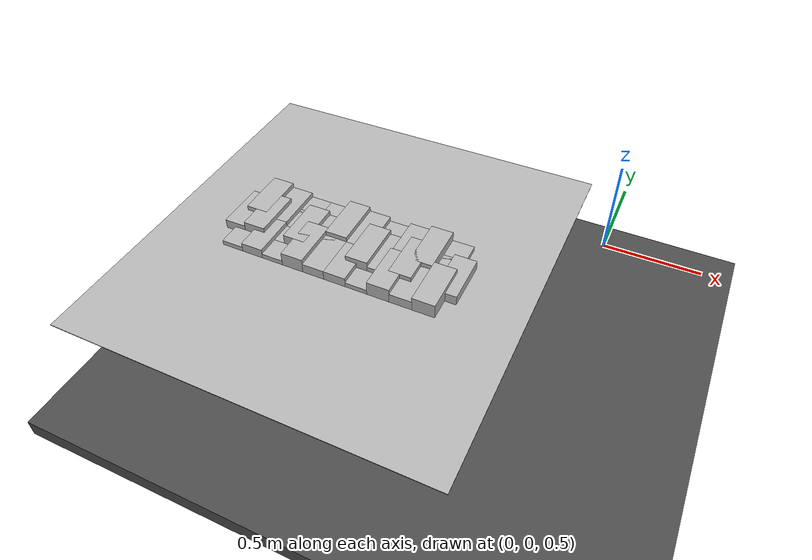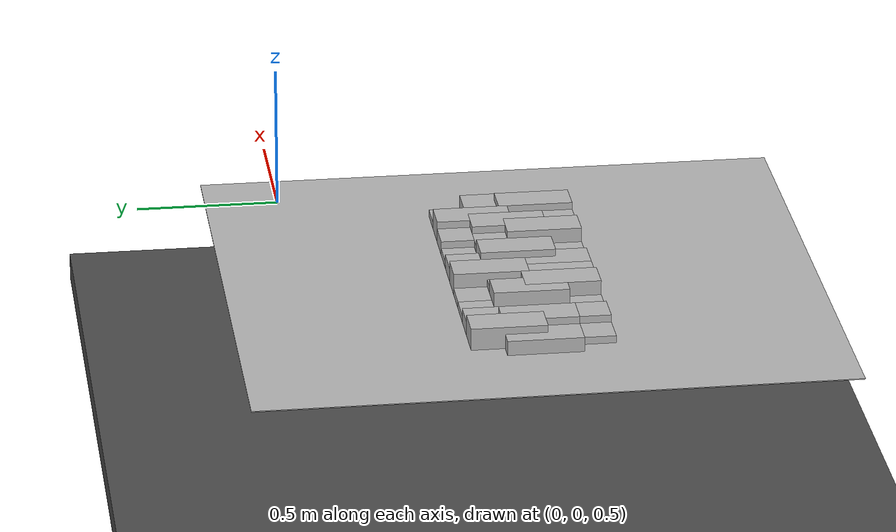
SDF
<sdf version="1.6">
 <world name="default">
  <model name="ground_plane">
   <static>1</static>
   <link name="link">
    <collision name="collision">
     <geometry><plane><normal>0 0 1</normal><size>100 100</size></plane></geometry>
     <surface><friction><ode><mu>100</mu><mu2>50</mu2></ode></friction></surface>
    </collision>
    <visual name="visual">
     <cast_shadows>0</cast_shadows>
     <geometry><plane><normal>0 0 1</normal><size>100 100</size></plane></geometry>
     <material>
      <script><uri>file://media/materials/scripts/gazebo.material</uri><name>Gazebo/Grey</name></script>
     </material>
    </visual>
   </link>
  </model>
  <model name="frc2016_roughterrain_0">
   <link name="link_clone_1">
    <pose>-1.02017 -0.749064 -0.073164 0 -0 0</pose>
    <inertial>
     <inertia><ixx>nan</ixx><ixy>0</ixy><ixz>0</ixz><iyy>nan</iyy><iyz>0</iyz><izz>nan</izz></inertia>
     <mass>0</mass>
    </inertial>
    <visual name="row1_block5_md">
     <pose>0.05715 0.1143 0.10968 0 -0 0</pose>
     <geometry><box><size>0.115452 0.257474 0.0508</size></box></geometry>
     <material><shader type="pixel"/></material>
    </visual>
    <visual name="row1_block2_lg">
     <pose>0.40005 0.1143 0.12238 0 -0 0</pose>
     <geometry><box><size>0.115452 0.257474 0.0762</size></box></geometry>
     <material><shader type="pixel"/></material>
    </visual>
    <visual name="row1_block4_sm">
     <pose>0.17145 0.1143 0.09698 0 -0 0</pose>
     <geometry><box><size>0.115452 0.257474 0.0254</size></box></geometry>
     <material><shader type="pixel"/></material>
    </visual>
    <visual name="platform">
     <pose>0 0 0.08269 0 -0 0</pose>
     <geometry><box><size>1.91826 2.01688 0.003175</size></box></geometry>
     <material><shader type="pixel"/></material>
    </visual>
    <visual name="row1_block1_sm">
     <pose>0.51435 0.1143 0.09698 0 -0 0</pose>
     <geometry><box><size>0.115452 0.257474 0.0254</size></box></geometry>
     <material><shader type="pixel"/></material>
    </visual>
    <visual name="row1_block3_md">
     <pose>0.28575 0.1143 0.10968 0 -0 0</pose>
     <geometry><box><size>0.115452 0.257474 0.0508</size></box></geometry>
     <material><shader type="pixel"/></material>
    </visual>
    <visual name="row1_block6_lg">
     <pose>-0.05715 0.1143 0.12238 0 -0 0</pose>
     <geometry><box><size>0.115452 0.257474 0.0762</size></box></geometry>
     <material><shader type="pixel"/></material>
    </visual>
    <visual name="row1_block7_sm">
     <pose>-0.17145 0.1143 0.09698 0 -0 0</pose>
     <geometry><box><size>0.115452 0.257474 0.0254</size></box></geometry>
     <material><shader type="pixel"/></material>
    </visual>
    <visual name="row1_block8_sm">
     <pose>-0.28575 0.1143 0.09698 0 -0 0</pose>
     <geometry><box><size>0.115452 0.257474 0.0254</size></box></geometry>
     <material><shader type="pixel"/></material>
    </visual>
    <visual name="row1_block9_md">
     <pose>-0.40005 0.1143 0.10968 0 -0 0</pose>
     <geometry><box><size>0.115452 0.257474 0.0508</size></box></geometry>
     <material><shader type="pixel"/></material>
    </visual>
    <visual name="row1_block10_lg">
     <pose>-0.51435 0.1143 0.12238 0 -0 0</pose>
     <geometry><box><size>0.115452 0.257474 0.0762</size></box></geometry>
     <material><shader type="pixel"/></material>
    </visual>
    <visual name="row2_block1_md">
     <pose>0.5715 0 0.10968 0 -0 0</pose>
     <geometry><box><size>0.115452 0.257474 0.0508</size></box></geometry>
     <material><shader type="pixel"/></material>
    </visual>
    <visual name="row2_block2_sm">
     <pose>0.4572 0 0.09698 0 -0 0</pose>
     <geometry><box><size>0.115452 0.257474 0.0254</size></box></geometry>
     <material><shader type="pixel"/></material>
    </visual>
    <visual name="row2_block3_lg">
     <pose>0.3429 0 0.12238 0 -0 0</pose>
     <geometry><box><size>0.115452 0.257474 0.0762</size></box></geometry>
     <material><shader type="pixel"/></material>
    </visual>
    <visual name="row2_block4_md">
     <pose>0.2286 0 0.10968 0 -0 0</pose>
     <geometry><box><size>0.115452 0.257474 0.0508</size></box></geometry>
     <material><shader type="pixel"/></material>
    </visual>
    <visual name="row2_block5_lg">
     <pose>0.1143 0 0.12238 0 -0 0</pose>
     <geometry><box><size>0.115452 0.257474 0.0762</size></box></geometry>
     <material><shader type="pixel"/></material>
    </visual>
    <visual name="row2_block6_sm">
     <pose>0 0 0.09698 0 -0 0</pose>
     <geometry><box><size>0.115452 0.257474 0.0254</size></box></geometry>
     <material><shader type="pixel"/></material>
    </visual>
    <visual name="row2_block7_md">
     <pose>-0.1143 0 0.10968 0 -0 0</pose>
     <geometry><box><size>0.115452 0.257474 0.0508</size></box></geometry>
     <material><shader type="pixel"/></material>
    </visual>
    <visual name="row2_block8_lg">
     <pose>-0.2286 0 0.12238 0 -0 0</pose>
     <geometry><box><size>0.115452 0.257474 0.0762</size></box></geometry>
     <material><shader type="pixel"/></material>
    </visual>
    <visual name="row2_block9_sm">
     <pose>-0.3429 0 0.09698 0 -0 0</pose>
     <geometry><box><size>0.115452 0.257474 0.0254</size></box></geometry>
     <material><shader type="pixel"/></material>
    </visual>
    <visual name="row2_block10_lg">
     <pose>-0.4572 0 0.12238 0 -0 0</pose>
     <geometry><box><size>0.115452 0.257474 0.0762</size></box></geometry>
     <material><shader type="pixel"/></material>
    </visual>
    <visual name="row2_block11_md">
     <pose>-0.5715 0 0.10968 0 -0 0</pose>
     <geometry><box><size>0.115452 0.257474 0.0508</size></box></geometry>
     <material><shader type="pixel"/></material>
    </visual>
    <visual name="row3_block2_md">
     <pose>0.40005 -0.1143 0.10968 0 -0 0</pose>
     <geometry><box><size>0.115452 0.257474 0.0508</size></box></geometry>
     <material><shader type="pixel"/></material>
    </visual>
    <visual name="row3_block1_lg">
     <pose>0.51435 -0.1143 0.12238 0 -0 0</pose>
     <geometry><box><size>0.115452 0.257474 0.0762</size></box></geometry>
     <material><shader type="pixel"/></material>
    </visual>
    <visual name="row3_block3_lg">
     <pose>0.28575 -0.1143 0.12238 0 -0 0</pose>
     <geometry><box><size>0.115452 0.257474 0.0762</size></box></geometry>
     <material><shader type="pixel"/></material>
    </visual>
    <visual name="row3_block4_sm">
     <pose>0.17145 -0.1143 0.09698 0 -0 0</pose>
     <geometry><box><size>0.115452 0.257474 0.0254</size></box></geometry>
     <material><shader type="pixel"/></material>
    </visual>
    <visual name="row3_block5_md">
     <pose>0.05715 -0.1143 0.10968 0 -0 0</pose>
     <geometry><box><size>0.115452 0.257474 0.0508</size></box></geometry>
     <material><shader type="pixel"/></material>
    </visual>
    <visual name="row3_block6_md">
     <pose>-0.05715 -0.1143 0.10968 0 -0 0</pose>
     <geometry><box><size>0.115452 0.257474 0.0508</size></box></geometry>
     <material><shader type="pixel"/></material>
    </visual>
    <visual name="row3_block8_sm">
     <pose>-0.28575 -0.1143 0.09698 0 -0 0</pose>
     <geometry><box><size>0.115452 0.257474 0.0254</size></box></geometry>
     <material><shader type="pixel"/></material>
    </visual>
    <visual name="row3_block7_lg">
     <pose>-0.17145 -0.1143 0.12238 0 -0 0</pose>
     <geometry><box><size>0.115452 0.257474 0.0762</size></box></geometry>
     <material><shader type="pixel"/></material>
    </visual>
    <visual name="row3_block9_md">
     <pose>-0.40005 -0.1143 0.10968 0 -0 0</pose>
     <geometry><box><size>0.115452 0.257474 0.0508</size></box></geometry>
     <material><shader type="pixel"/></material>
    </visual>
    <visual name="row3_block10_sm">
     <pose>-0.51435 -0.1143 0.09698 0 -0 0</pose>
     <geometry><box><size>0.115452 0.257474 0.0254</size></box></geometry>
     <material><shader type="pixel"/></material>
    </visual>
    <collision name="row2_block5_lg_0">
     <pose>0.1143 0 0.12238 0 -0 0</pose>
     <geometry><box><size>0.115452 0.257474 0.0762</size></box></geometry>
     <surface>
      <friction>
       <ode><mu>1</mu><mu2>1</mu2><fdir1>0 0 0</fdir1><slip1>0</slip1><slip2>0</slip2></ode>
       <torsional>
        <coefficient>1</coefficient>
        <patch_radius>0</patch_radius>
        <surface_radius>0</surface_radius>
        <use_patch_radius>1</use_patch_radius>
        <ode><slip>0</slip></ode>
       </torsional>
      </friction>
      <bounce><restitution_coefficient>0</restitution_coefficient><threshold>1e+06</threshold></bounce>
      <contact>
       <collide_without_contact>0</collide_without_contact>
       <collide_without_contact_bitmask>1</collide_without_contact_bitmask>
       <collide_bitmask>1</collide_bitmask>
       <ode>
        <soft_cfm>0</soft_cfm>
        <soft_erp>0.2</soft_erp>
        <kp>1e+13</kp>
        <kd>1</kd>
        <max_vel>0.01</max_vel>
        <min_depth>0</min_depth>
       </ode>
       <bullet>
        <split_impulse>1</split_impulse>
        <split_impulse_penetration_threshold>-0.01</split_impulse_penetration_threshold>
        <soft_cfm>0</soft_cfm>
        <soft_erp>0.2</soft_erp>
        <kp>1e+13</kp>
        <kd>1</kd>
       </bullet>
      </contact>
     </surface>
    </collision>
    <collision name="platform_0">
     <pose>0 0 0.08269 0 -0 0</pose>
     <geometry><box><size>1.91826 2.01688 0.003175</size></box></geometry>
     <surface>
      <friction>
       <ode><mu>1</mu><mu2>1</mu2><fdir1>0 0 0</fdir1><slip1>0</slip1><slip2>0</slip2></ode>
       <torsional>
        <coefficient>1</coefficient>
        <patch_radius>0</patch_radius>
        <surface_radius>0</surface_radius>
        <use_patch_radius>1</use_patch_radius>
        <ode><slip>0</slip></ode>
       </torsional>
      </friction>
      <bounce><restitution_coefficient>0</restitution_coefficient><threshold>1e+06</threshold></bounce>
      <contact>
       <collide_without_contact>0</collide_without_contact>
       <collide_without_contact_bitmask>1</collide_without_contact_bitmask>
       <collide_bitmask>1</collide_bitmask>
       <ode>
        <soft_cfm>0</soft_cfm>
        <soft_erp>0.2</soft_erp>
        <kp>1e+13</kp>
        <kd>1</kd>
        <max_vel>0.01</max_vel>
        <min_depth>0</min_depth>
       </ode>
       <bullet>
        <split_impulse>1</split_impulse>
        <split_impulse_penetration_threshold>-0.01</split_impulse_penetration_threshold>
        <soft_cfm>0</soft_cfm>
        <soft_erp>0.2</soft_erp>
        <kp>1e+13</kp>
        <kd>1</kd>
       </bullet>
      </contact>
     </surface>
    </collision>
    <collision name="row1_block1_sm_0">
     <pose>0.51435 0.1143 0.09698 0 -0 0</pose>
     <geometry><box><size>0.115452 0.257474 0.0254</size></box></geometry>
     <surface>
      <friction>
       <ode><mu>1</mu><mu2>1</mu2><fdir1>0 0 0</fdir1><slip1>0</slip1><slip2>0</slip2></ode>
       <torsional>
        <coefficient>1</coefficient>
        <patch_radius>0</patch_radius>
        <surface_radius>0</surface_radius>
        <use_patch_radius>1</use_patch_radius>
        <ode><slip>0</slip></ode>
       </torsional>
      </friction>
      <bounce><restitution_coefficient>0</restitution_coefficient><threshold>1e+06</threshold></bounce>
      <contact>
       <collide_without_contact>0</collide_without_contact>
       <collide_without_contact_bitmask>1</collide_without_contact_bitmask>
       <collide_bitmask>1</collide_bitmask>
       <ode>
        <soft_cfm>0</soft_cfm>
        <soft_erp>0.2</soft_erp>
        <kp>1e+13</kp>
        <kd>1</kd>
        <max_vel>0.01</max_vel>
        <min_depth>0</min_depth>
       </ode>
       <bullet>
        <split_impulse>1</split_impulse>
        <split_impulse_penetration_threshold>-0.01</split_impulse_penetration_threshold>
        <soft_cfm>0</soft_cfm>
        <soft_erp>0.2</soft_erp>
        <kp>1e+13</kp>
        <kd>1</kd>
       </bullet>
      </contact>
     </surface>
    </collision>
    <collision name="row1_block3_md_0">
     <pose>0.28575 0.1143 0.10968 0 -0 0</pose>
     <geometry><box><size>0.115452 0.257474 0.0508</size></box></geometry>
     <surface>
      <friction>
       <ode><mu>1</mu><mu2>1</mu2><fdir1>0 0 0</fdir1><slip1>0</slip1><slip2>0</slip2></ode>
       <torsional>
        <coefficient>1</coefficient>
        <patch_radius>0</patch_radius>
        <surface_radius>0</surface_radius>
        <use_patch_radius>1</use_patch_radius>
        <ode><slip>0</slip></ode>
       </torsional>
      </friction>
      <bounce><restitution_coefficient>0</restitution_coefficient><threshold>1e+06</threshold></bounce>
      <contact>
       <collide_without_contact>0</collide_without_contact>
       <collide_without_contact_bitmask>1</collide_without_contact_bitmask>
       <collide_bitmask>1</collide_bitmask>
       <ode>
        <soft_cfm>0</soft_cfm>
        <soft_erp>0.2</soft_erp>
        <kp>1e+13</kp>
        <kd>1</kd>
        <max_vel>0.01</max_vel>
        <min_depth>0</min_depth>
       </ode>
       <bullet>
        <split_impulse>1</split_impulse>
        <split_impulse_penetration_threshold>-0.01</split_impulse_penetration_threshold>
        <soft_cfm>0</soft_cfm>
        <soft_erp>0.2</soft_erp>
        <kp>1e+13</kp>
        <kd>1</kd>
       </bullet>
      </contact>
     </surface>
    </collision>
    <collision name="row1_block6_lg_0">
     <pose>-0.05715 0.1143 0.12238 0 -0 0</pose>
     <geometry><box><size>0.115452 0.257474 0.0762</size></box></geometry>
     <surface>
      <friction>
       <ode><mu>1</mu><mu2>1</mu2><fdir1>0 0 0</fdir1><slip1>0</slip1><slip2>0</slip2></ode>
       <torsional>
        <coefficient>1</coefficient>
        <patch_radius>0</patch_radius>
        <surface_radius>0</surface_radius>
        <use_patch_radius>1</use_patch_radius>
        <ode><slip>0</slip></ode>
       </torsional>
      </friction>
      <bounce><restitution_coefficient>0</restitution_coefficient><threshold>1e+06</threshold></bounce>
      <contact>
       <collide_without_contact>0</collide_without_contact>
       <collide_without_contact_bitmask>1</collide_without_contact_bitmask>
       <collide_bitmask>1</collide_bitmask>
       <ode>
        <soft_cfm>0</soft_cfm>
        <soft_erp>0.2</soft_erp>
        <kp>1e+13</kp>
        <kd>1</kd>
        <max_vel>0.01</max_vel>
        <min_depth>0</min_depth>
       </ode>
       <bullet>
        <split_impulse>1</split_impulse>
        <split_impulse_penetration_threshold>-0.01</split_impulse_penetration_threshold>
        <soft_cfm>0</soft_cfm>
        <soft_erp>0.2</soft_erp>
        <kp>1e+13</kp>
        <kd>1</kd>
       </bullet>
      </contact>
     </surface>
    </collision>
    <collision name="row1_block2_lg_0">
     <pose>0.40005 0.1143 0.12238 0 -0 0</pose>
     <geometry><box><size>0.115452 0.257474 0.0762</size></box></geometry>
     <surface>
      <friction>
       <ode><mu>1</mu><mu2>1</mu2><fdir1>0 0 0</fdir1><slip1>0</slip1><slip2>0</slip2></ode>
       <torsional>
        <coefficient>1</coefficient>
        <patch_radius>0</patch_radius>
        <surface_radius>0</surface_radius>
        <use_patch_radius>1</use_patch_radius>
        <ode><slip>0</slip></ode>
       </torsional>
      </friction>
      <bounce><restitution_coefficient>0</restitution_coefficient><threshold>1e+06</threshold></bounce>
      <contact>
       <collide_without_contact>0</collide_without_contact>
       <collide_without_contact_bitmask>1</collide_without_contact_bitmask>
       <collide_bitmask>1</collide_bitmask>
       <ode>
        <soft_cfm>0</soft_cfm>
        <soft_erp>0.2</soft_erp>
        <kp>1e+13</kp>
        <kd>1</kd>
        <max_vel>0.01</max_vel>
        <min_depth>0</min_depth>
       </ode>
       <bullet>
        <split_impulse>1</split_impulse>
        <split_impulse_penetration_threshold>-0.01</split_impulse_penetration_threshold>
        <soft_cfm>0</soft_cfm>
        <soft_erp>0.2</soft_erp>
        <kp>1e+13</kp>
        <kd>1</kd>
       </bullet>
      </contact>
     </surface>
    </collision>
    <collision name="row1_block4_sm_0">
     <pose>0.17145 0.1143 0.09698 0 -0 0</pose>
     <geometry><box><size>0.115452 0.257474 0.0254</size></box></geometry>
     <surface>
      <friction>
       <ode><mu>1</mu><mu2>1</mu2><fdir1>0 0 0</fdir1><slip1>0</slip1><slip2>0</slip2></ode>
       <torsional>
        <coefficient>1</coefficient>
        <patch_radius>0</patch_radius>
        <surface_radius>0</surface_radius>
        <use_patch_radius>1</use_patch_radius>
        <ode><slip>0</slip></ode>
       </torsional>
      </friction>
      <bounce><restitution_coefficient>0</restitution_coefficient><threshold>1e+06</threshold></bounce>
      <contact>
       <collide_without_contact>0</collide_without_contact>
       <collide_without_contact_bitmask>1</collide_without_contact_bitmask>
       <collide_bitmask>1</collide_bitmask>
       <ode>
        <soft_cfm>0</soft_cfm>
        <soft_erp>0.2</soft_erp>
        <kp>1e+13</kp>
        <kd>1</kd>
        <max_vel>0.01</max_vel>
        <min_depth>0</min_depth>
       </ode>
       <bullet>
        <split_impulse>1</split_impulse>
        <split_impulse_penetration_threshold>-0.01</split_impulse_penetration_threshold>
        <soft_cfm>0</soft_cfm>
        <soft_erp>0.2</soft_erp>
        <kp>1e+13</kp>
        <kd>1</kd>
       </bullet>
      </contact>
     </surface>
    </collision>
    <collision name="row1_block5_md_0">
     <pose>0.05715 0.1143 0.10968 0 -0 0</pose>
     <geometry><box><size>0.115452 0.257474 0.0508</size></box></geometry>
     <surface>
      <friction>
       <ode><mu>1</mu><mu2>1</mu2><fdir1>0 0 0</fdir1><slip1>0</slip1><slip2>0</slip2></ode>
       <torsional>
        <coefficient>1</coefficient>
        <patch_radius>0</patch_radius>
        <surface_radius>0</surface_radius>
        <use_patch_radius>1</use_patch_radius>
        <ode><slip>0</slip></ode>
       </torsional>
      </friction>
      <bounce><restitution_coefficient>0</restitution_coefficient><threshold>1e+06</threshold></bounce>
      <contact>
       <collide_without_contact>0</collide_without_contact>
       <collide_without_contact_bitmask>1</collide_without_contact_bitmask>
       <collide_bitmask>1</collide_bitmask>
       <ode>
        <soft_cfm>0</soft_cfm>
        <soft_erp>0.2</soft_erp>
        <kp>1e+13</kp>
        <kd>1</kd>
        <max_vel>0.01</max_vel>
        <min_depth>0</min_depth>
       </ode>
       <bullet>
        <split_impulse>1</split_impulse>
        <split_impulse_penetration_threshold>-0.01</split_impulse_penetration_threshold>
        <soft_cfm>0</soft_cfm>
        <soft_erp>0.2</soft_erp>
        <kp>1e+13</kp>
        <kd>1</kd>
       </bullet>
      </contact>
     </surface>
    </collision>
    <collision name="row1_block7_sm_0">
     <pose>-0.17145 0.1143 0.09698 0 -0 0</pose>
     <geometry><box><size>0.115452 0.257474 0.0254</size></box></geometry>
     <surface>
      <friction>
       <ode><mu>1</mu><mu2>1</mu2><fdir1>0 0 0</fdir1><slip1>0</slip1><slip2>0</slip2></ode>
       <torsional>
        <coefficient>1</coefficient>
        <patch_radius>0</patch_radius>
        <surface_radius>0</surface_radius>
        <use_patch_radius>1</use_patch_radius>
        <ode><slip>0</slip></ode>
       </torsional>
      </friction>
      <bounce><restitution_coefficient>0</restitution_coefficient><threshold>1e+06</threshold></bounce>
      <contact>
       <collide_without_contact>0</collide_without_contact>
       <collide_without_contact_bitmask>1</collide_without_contact_bitmask>
       <collide_bitmask>1</collide_bitmask>
       <ode>
        <soft_cfm>0</soft_cfm>
        <soft_erp>0.2</soft_erp>
        <kp>1e+13</kp>
        <kd>1</kd>
        <max_vel>0.01</max_vel>
        <min_depth>0</min_depth>
       </ode>
       <bullet>
        <split_impulse>1</split_impulse>
        <split_impulse_penetration_threshold>-0.01</split_impulse_penetration_threshold>
        <soft_cfm>0</soft_cfm>
        <soft_erp>0.2</soft_erp>
        <kp>1e+13</kp>
        <kd>1</kd>
       </bullet>
      </contact>
     </surface>
    </collision>
    <collision name="row1_block10_lg_0">
     <pose>-0.51435 0.1143 0.12238 0 -0 0</pose>
     <geometry><box><size>0.115452 0.257474 0.0762</size></box></geometry>
     <surface>
      <friction>
       <ode><mu>1</mu><mu2>1</mu2><fdir1>0 0 0</fdir1><slip1>0</slip1><slip2>0</slip2></ode>
       <torsional>
        <coefficient>1</coefficient>
        <patch_radius>0</patch_radius>
        <surface_radius>0</surface_radius>
        <use_patch_radius>1</use_patch_radius>
        <ode><slip>0</slip></ode>
       </torsional>
      </friction>
      <bounce><restitution_coefficient>0</restitution_coefficient><threshold>1e+06</threshold></bounce>
      <contact>
       <collide_without_contact>0</collide_without_contact>
       <collide_without_contact_bitmask>1</collide_without_contact_bitmask>
       <collide_bitmask>1</collide_bitmask>
       <ode>
        <soft_cfm>0</soft_cfm>
        <soft_erp>0.2</soft_erp>
        <kp>1e+13</kp>
        <kd>1</kd>
        <max_vel>0.01</max_vel>
        <min_depth>0</min_depth>
       </ode>
       <bullet>
        <split_impulse>1</split_impulse>
        <split_impulse_penetration_threshold>-0.01</split_impulse_penetration_threshold>
        <soft_cfm>0</soft_cfm>
        <soft_erp>0.2</soft_erp>
        <kp>1e+13</kp>
        <kd>1</kd>
       </bullet>
      </contact>
     </surface>
    </collision>
    <collision name="row1_block8_sm_0">
     <pose>-0.28575 0.1143 0.09698 0 -0 0</pose>
     <geometry><box><size>0.115452 0.257474 0.0254</size></box></geometry>
     <surface>
      <friction>
       <ode><mu>1</mu><mu2>1</mu2><fdir1>0 0 0</fdir1><slip1>0</slip1><slip2>0</slip2></ode>
       <torsional>
        <coefficient>1</coefficient>
        <patch_radius>0</patch_radius>
        <surface_radius>0</surface_radius>
        <use_patch_radius>1</use_patch_radius>
        <ode><slip>0</slip></ode>
       </torsional>
      </friction>
      <bounce><restitution_coefficient>0</restitution_coefficient><threshold>1e+06</threshold></bounce>
      <contact>
       <collide_without_contact>0</collide_without_contact>
       <collide_without_contact_bitmask>1</collide_without_contact_bitmask>
       <collide_bitmask>1</collide_bitmask>
       <ode>
        <soft_cfm>0</soft_cfm>
        <soft_erp>0.2</soft_erp>
        <kp>1e+13</kp>
        <kd>1</kd>
        <max_vel>0.01</max_vel>
        <min_depth>0</min_depth>
       </ode>
       <bullet>
        <split_impulse>1</split_impulse>
        <split_impulse_penetration_threshold>-0.01</split_impulse_penetration_threshold>
        <soft_cfm>0</soft_cfm>
        <soft_erp>0.2</soft_erp>
        <kp>1e+13</kp>
        <kd>1</kd>
       </bullet>
      </contact>
     </surface>
    </collision>
    <collision name="row1_block9_md_0">
     <pose>-0.40005 0.1143 0.10968 0 -0 0</pose>
     <geometry><box><size>0.115452 0.257474 0.0508</size></box></geometry>
     <surface>
      <friction>
       <ode><mu>1</mu><mu2>1</mu2><fdir1>0 0 0</fdir1><slip1>0</slip1><slip2>0</slip2></ode>
       <torsional>
        <coefficient>1</coefficient>
        <patch_radius>0</patch_radius>
        <surface_radius>0</surface_radius>
        <use_patch_radius>1</use_patch_radius>
        <ode><slip>0</slip></ode>
       </torsional>
      </friction>
      <bounce><restitution_coefficient>0</restitution_coefficient><threshold>1e+06</threshold></bounce>
      <contact>
       <collide_without_contact>0</collide_without_contact>
       <collide_without_contact_bitmask>1</collide_without_contact_bitmask>
       <collide_bitmask>1</collide_bitmask>
       <ode>
        <soft_cfm>0</soft_cfm>
        <soft_erp>0.2</soft_erp>
        <kp>1e+13</kp>
        <kd>1</kd>
        <max_vel>0.01</max_vel>
        <min_depth>0</min_depth>
       </ode>
       <bullet>
        <split_impulse>1</split_impulse>
        <split_impulse_penetration_threshold>-0.01</split_impulse_penetration_threshold>
        <soft_cfm>0</soft_cfm>
        <soft_erp>0.2</soft_erp>
        <kp>1e+13</kp>
        <kd>1</kd>
       </bullet>
      </contact>
     </surface>
    </collision>
    <collision name="row2_block1_md_0">
     <pose>0.5715 0 0.10968 0 -0 0</pose>
     <geometry><box><size>0.115452 0.257474 0.0508</size></box></geometry>
     <surface>
      <friction>
       <ode><mu>1</mu><mu2>1</mu2><fdir1>0 0 0</fdir1><slip1>0</slip1><slip2>0</slip2></ode>
       <torsional>
        <coefficient>1</coefficient>
        <patch_radius>0</patch_radius>
        <surface_radius>0</surface_radius>
        <use_patch_radius>1</use_patch_radius>
        <ode><slip>0</slip></ode>
       </torsional>
      </friction>
      <bounce><restitution_coefficient>0</restitution_coefficient><threshold>1e+06</threshold></bounce>
      <contact>
       <collide_without_contact>0</collide_without_contact>
       <collide_without_contact_bitmask>1</collide_without_contact_bitmask>
       <collide_bitmask>1</collide_bitmask>
       <ode>
        <soft_cfm>0</soft_cfm>
        <soft_erp>0.2</soft_erp>
        <kp>1e+13</kp>
        <kd>1</kd>
        <max_vel>0.01</max_vel>
        <min_depth>0</min_depth>
       </ode>
       <bullet>
        <split_impulse>1</split_impulse>
        <split_impulse_penetration_threshold>-0.01</split_impulse_penetration_threshold>
        <soft_cfm>0</soft_cfm>
        <soft_erp>0.2</soft_erp>
        <kp>1e+13</kp>
        <kd>1</kd>
       </bullet>
      </contact>
     </surface>
    </collision>
    <collision name="row2_block2_sm_0">
     <pose>0.4572 0 0.09698 0 -0 0</pose>
     <geometry><box><size>0.115452 0.257474 0.0254</size></box></geometry>
     <surface>
      <friction>
       <ode><mu>1</mu><mu2>1</mu2><fdir1>0 0 0</fdir1><slip1>0</slip1><slip2>0</slip2></ode>
       <torsional>
        <coefficient>1</coefficient>
        <patch_radius>0</patch_radius>
        <surface_radius>0</surface_radius>
        <use_patch_radius>1</use_patch_radius>
        <ode><slip>0</slip></ode>
       </torsional>
      </friction>
      <bounce><restitution_coefficient>0</restitution_coefficient><threshold>1e+06</threshold></bounce>
      <contact>
       <collide_without_contact>0</collide_without_contact>
       <collide_without_contact_bitmask>1</collide_without_contact_bitmask>
       <collide_bitmask>1</collide_bitmask>
       <ode>
        <soft_cfm>0</soft_cfm>
        <soft_erp>0.2</soft_erp>
        <kp>1e+13</kp>
        <kd>1</kd>
        <max_vel>0.01</max_vel>
        <min_depth>0</min_depth>
       </ode>
       <bullet>
        <split_impulse>1</split_impulse>
        <split_impulse_penetration_threshold>-0.01</split_impulse_penetration_threshold>
        <soft_cfm>0</soft_cfm>
        <soft_erp>0.2</soft_erp>
        <kp>1e+13</kp>
        <kd>1</kd>
       </bullet>
      </contact>
     </surface>
    </collision>
    <collision name="row2_block3_lg_0">
     <pose>0.3429 0 0.12238 0 -0 0</pose>
     <geometry><box><size>0.115452 0.257474 0.0762</size></box></geometry>
     <surface>
      <friction>
       <ode><mu>1</mu><mu2>1</mu2><fdir1>0 0 0</fdir1><slip1>0</slip1><slip2>0</slip2></ode>
       <torsional>
        <coefficient>1</coefficient>
        <patch_radius>0</patch_radius>
        <surface_radius>0</surface_radius>
        <use_patch_radius>1</use_patch_radius>
        <ode><slip>0</slip></ode>
       </torsional>
      </friction>
      <bounce><restitution_coefficient>0</restitution_coefficient><threshold>1e+06</threshold></bounce>
      <contact>
       <collide_without_contact>0</collide_without_contact>
       <collide_without_contact_bitmask>1</collide_without_contact_bitmask>
       <collide_bitmask>1</collide_bitmask>
       <ode>
        <soft_cfm>0</soft_cfm>
        <soft_erp>0.2</soft_erp>
        <kp>1e+13</kp>
        <kd>1</kd>
        <max_vel>0.01</max_vel>
        <min_depth>0</min_depth>
       </ode>
       <bullet>
        <split_impulse>1</split_impulse>
        <split_impulse_penetration_threshold>-0.01</split_impulse_penetration_threshold>
        <soft_cfm>0</soft_cfm>
        <soft_erp>0.2</soft_erp>
        <kp>1e+13</kp>
        <kd>1</kd>
       </bullet>
      </contact>
     </surface>
    </collision>
    <collision name="row2_block4_md_0">
     <pose>0.2286 0 0.10968 0 -0 0</pose>
     <geometry><box><size>0.115452 0.257474 0.0508</size></box></geometry>
     <surface>
      <friction>
       <ode><mu>1</mu><mu2>1</mu2><fdir1>0 0 0</fdir1><slip1>0</slip1><slip2>0</slip2></ode>
       <torsional>
        <coefficient>1</coefficient>
        <patch_radius>0</patch_radius>
        <surface_radius>0</surface_radius>
        <use_patch_radius>1</use_patch_radius>
        <ode><slip>0</slip></ode>
       </torsional>
      </friction>
      <bounce><restitution_coefficient>0</restitution_coefficient><threshold>1e+06</threshold></bounce>
      <contact>
       <collide_without_contact>0</collide_without_contact>
       <collide_without_contact_bitmask>1</collide_without_contact_bitmask>
       <collide_bitmask>1</collide_bitmask>
       <ode>
        <soft_cfm>0</soft_cfm>
        <soft_erp>0.2</soft_erp>
        <kp>1e+13</kp>
        <kd>1</kd>
        <max_vel>0.01</max_vel>
        <min_depth>0</min_depth>
       </ode>
       <bullet>
        <split_impulse>1</split_impulse>
        <split_impulse_penetration_threshold>-0.01</split_impulse_penetration_threshold>
        <soft_cfm>0</soft_cfm>
        <soft_erp>0.2</soft_erp>
        <kp>1e+13</kp>
        <kd>1</kd>
       </bullet>
      </contact>
     </surface>
    </collision>
    <collision name="row2_block10_lg_0">
     <pose>-0.4572 0 0.12238 0 -0 0</pose>
     <geometry><box><size>0.115452 0.257474 0.0762</size></box></geometry>
     <surface>
      <friction>
       <ode><mu>1</mu><mu2>1</mu2><fdir1>0 0 0</fdir1><slip1>0</slip1><slip2>0</slip2></ode>
       <torsional>
        <coefficient>1</coefficient>
        <patch_radius>0</patch_radius>
        <surface_radius>0</surface_radius>
        <use_patch_radius>1</use_patch_radius>
        <ode><slip>0</slip></ode>
       </torsional>
      </friction>
      <bounce><restitution_coefficient>0</restitution_coefficient><threshold>1e+06</threshold></bounce>
      <contact>
       <collide_without_contact>0</collide_without_contact>
       <collide_without_contact_bitmask>1</collide_without_contact_bitmask>
       <collide_bitmask>1</collide_bitmask>
       <ode>
        <soft_cfm>0</soft_cfm>
        <soft_erp>0.2</soft_erp>
        <kp>1e+13</kp>
        <kd>1</kd>
        <max_vel>0.01</max_vel>
        <min_depth>0</min_depth>
       </ode>
       <bullet>
        <split_impulse>1</split_impulse>
        <split_impulse_penetration_threshold>-0.01</split_impulse_penetration_threshold>
        <soft_cfm>0</soft_cfm>
        <soft_erp>0.2</soft_erp>
        <kp>1e+13</kp>
        <kd>1</kd>
       </bullet>
      </contact>
     </surface>
    </collision>
    <collision name="row2_block6_sm_0">
     <pose>0 0 0.09698 0 -0 0</pose>
     <geometry><box><size>0.115452 0.257474 0.0254</size></box></geometry>
     <surface>
      <friction>
       <ode><mu>1</mu><mu2>1</mu2><fdir1>0 0 0</fdir1><slip1>0</slip1><slip2>0</slip2></ode>
       <torsional>
        <coefficient>1</coefficient>
        <patch_radius>0</patch_radius>
        <surface_radius>0</surface_radius>
        <use_patch_radius>1</use_patch_radius>
        <ode><slip>0</slip></ode>
       </torsional>
      </friction>
      <bounce><restitution_coefficient>0</restitution_coefficient><threshold>1e+06</threshold></bounce>
      <contact>
       <collide_without_contact>0</collide_without_contact>
       <collide_without_contact_bitmask>1</collide_without_contact_bitmask>
       <collide_bitmask>1</collide_bitmask>
       <ode>
        <soft_cfm>0</soft_cfm>
        <soft_erp>0.2</soft_erp>
        <kp>1e+13</kp>
        <kd>1</kd>
        <max_vel>0.01</max_vel>
        <min_depth>0</min_depth>
       </ode>
       <bullet>
        <split_impulse>1</split_impulse>
        <split_impulse_penetration_threshold>-0.01</split_impulse_penetration_threshold>
        <soft_cfm>0</soft_cfm>
        <soft_erp>0.2</soft_erp>
        <kp>1e+13</kp>
        <kd>1</kd>
       </bullet>
      </contact>
     </surface>
    </collision>
    <collision name="row2_block7_md_0">
     <pose>-0.1143 0 0.10968 0 -0 0</pose>
     <geometry><box><size>0.115452 0.257474 0.0508</size></box></geometry>
     <surface>
      <friction>
       <ode><mu>1</mu><mu2>1</mu2><fdir1>0 0 0</fdir1><slip1>0</slip1><slip2>0</slip2></ode>
       <torsional>
        <coefficient>1</coefficient>
        <patch_radius>0</patch_radius>
        <surface_radius>0</surface_radius>
        <use_patch_radius>1</use_patch_radius>
        <ode><slip>0</slip></ode>
       </torsional>
      </friction>
      <bounce><restitution_coefficient>0</restitution_coefficient><threshold>1e+06</threshold></bounce>
      <contact>
       <collide_without_contact>0</collide_without_contact>
       <collide_without_contact_bitmask>1</collide_without_contact_bitmask>
       <collide_bitmask>1</collide_bitmask>
       <ode>
        <soft_cfm>0</soft_cfm>
        <soft_erp>0.2</soft_erp>
        <kp>1e+13</kp>
        <kd>1</kd>
        <max_vel>0.01</max_vel>
        <min_depth>0</min_depth>
       </ode>
       <bullet>
        <split_impulse>1</split_impulse>
        <split_impulse_penetration_threshold>-0.01</split_impulse_penetration_threshold>
        <soft_cfm>0</soft_cfm>
        <soft_erp>0.2</soft_erp>
        <kp>1e+13</kp>
        <kd>1</kd>
       </bullet>
      </contact>
     </surface>
    </collision>
    <collision name="row2_block11_md_0">
     <pose>-0.5715 0 0.10968 0 -0 0</pose>
     <geometry><box><size>0.115452 0.257474 0.0508</size></box></geometry>
     <surface>
      <friction>
       <ode><mu>1</mu><mu2>1</mu2><fdir1>0 0 0</fdir1><slip1>0</slip1><slip2>0</slip2></ode>
       <torsional>
        <coefficient>1</coefficient>
        <patch_radius>0</patch_radius>
        <surface_radius>0</surface_radius>
        <use_patch_radius>1</use_patch_radius>
        <ode><slip>0</slip></ode>
       </torsional>
      </friction>
      <bounce><restitution_coefficient>0</restitution_coefficient><threshold>1e+06</threshold></bounce>
      <contact>
       <collide_without_contact>0</collide_without_contact>
       <collide_without_contact_bitmask>1</collide_without_contact_bitmask>
       <collide_bitmask>1</collide_bitmask>
       <ode>
        <soft_cfm>0</soft_cfm>
        <soft_erp>0.2</soft_erp>
        <kp>1e+13</kp>
        <kd>1</kd>
        <max_vel>0.01</max_vel>
        <min_depth>0</min_depth>
       </ode>
       <bullet>
        <split_impulse>1</split_impulse>
        <split_impulse_penetration_threshold>-0.01</split_impulse_penetration_threshold>
        <soft_cfm>0</soft_cfm>
        <soft_erp>0.2</soft_erp>
        <kp>1e+13</kp>
        <kd>1</kd>
       </bullet>
      </contact>
     </surface>
    </collision>
    <collision name="row2_block8_lg_0">
     <pose>-0.2286 0 0.12238 0 -0 0</pose>
     <geometry><box><size>0.115452 0.257474 0.0762</size></box></geometry>
     <surface>
      <friction>
       <ode><mu>1</mu><mu2>1</mu2><fdir1>0 0 0</fdir1><slip1>0</slip1><slip2>0</slip2></ode>
       <torsional>
        <coefficient>1</coefficient>
        <patch_radius>0</patch_radius>
        <surface_radius>0</surface_radius>
        <use_patch_radius>1</use_patch_radius>
        <ode><slip>0</slip></ode>
       </torsional>
      </friction>
      <bounce><restitution_coefficient>0</restitution_coefficient><threshold>1e+06</threshold></bounce>
      <contact>
       <collide_without_contact>0</collide_without_contact>
       <collide_without_contact_bitmask>1</collide_without_contact_bitmask>
       <collide_bitmask>1</collide_bitmask>
       <ode>
        <soft_cfm>0</soft_cfm>
        <soft_erp>0.2</soft_erp>
        <kp>1e+13</kp>
        <kd>1</kd>
        <max_vel>0.01</max_vel>
        <min_depth>0</min_depth>
       </ode>
       <bullet>
        <split_impulse>1</split_impulse>
        <split_impulse_penetration_threshold>-0.01</split_impulse_penetration_threshold>
        <soft_cfm>0</soft_cfm>
        <soft_erp>0.2</soft_erp>
        <kp>1e+13</kp>
        <kd>1</kd>
       </bullet>
      </contact>
     </surface>
    </collision>
    <collision name="row2_block9_sm_0">
     <pose>-0.3429 0 0.09698 0 -0 0</pose>
     <geometry><box><size>0.115452 0.257474 0.0254</size></box></geometry>
     <surface>
      <friction>
       <ode><mu>1</mu><mu2>1</mu2><fdir1>0 0 0</fdir1><slip1>0</slip1><slip2>0</slip2></ode>
       <torsional>
        <coefficient>1</coefficient>
        <patch_radius>0</patch_radius>
        <surface_radius>0</surface_radius>
        <use_patch_radius>1</use_patch_radius>
        <ode><slip>0</slip></ode>
       </torsional>
      </friction>
      <bounce><restitution_coefficient>0</restitution_coefficient><threshold>1e+06</threshold></bounce>
      <contact>
       <collide_without_contact>0</collide_without_contact>
       <collide_without_contact_bitmask>1</collide_without_contact_bitmask>
       <collide_bitmask>1</collide_bitmask>
       <ode>
        <soft_cfm>0</soft_cfm>
        <soft_erp>0.2</soft_erp>
        <kp>1e+13</kp>
        <kd>1</kd>
        <max_vel>0.01</max_vel>
        <min_depth>0</min_depth>
       </ode>
       <bullet>
        <split_impulse>1</split_impulse>
        <split_impulse_penetration_threshold>-0.01</split_impulse_penetration_threshold>
        <soft_cfm>0</soft_cfm>
        <soft_erp>0.2</soft_erp>
        <kp>1e+13</kp>
        <kd>1</kd>
       </bullet>
      </contact>
     </surface>
    </collision>
    <collision name="row3_block2_md_0">
     <pose>0.40005 -0.1143 0.10968 0 -0 0</pose>
     <geometry><box><size>0.115452 0.257474 0.0508</size></box></geometry>
     <surface>
      <friction>
       <ode><mu>1</mu><mu2>1</mu2><fdir1>0 0 0</fdir1><slip1>0</slip1><slip2>0</slip2></ode>
       <torsional>
        <coefficient>1</coefficient>
        <patch_radius>0</patch_radius>
        <surface_radius>0</surface_radius>
        <use_patch_radius>1</use_patch_radius>
        <ode><slip>0</slip></ode>
       </torsional>
      </friction>
      <bounce><restitution_coefficient>0</restitution_coefficient><threshold>1e+06</threshold></bounce>
      <contact>
       <collide_without_contact>0</collide_without_contact>
       <collide_without_contact_bitmask>1</collide_without_contact_bitmask>
       <collide_bitmask>1</collide_bitmask>
       <ode>
        <soft_cfm>0</soft_cfm>
        <soft_erp>0.2</soft_erp>
        <kp>1e+13</kp>
        <kd>1</kd>
        <max_vel>0.01</max_vel>
        <min_depth>0</min_depth>
       </ode>
       <bullet>
        <split_impulse>1</split_impulse>
        <split_impulse_penetration_threshold>-0.01</split_impulse_penetration_threshold>
        <soft_cfm>0</soft_cfm>
        <soft_erp>0.2</soft_erp>
        <kp>1e+13</kp>
        <kd>1</kd>
       </bullet>
      </contact>
     </surface>
    </collision>
    <collision name="row3_block1_lg_0">
     <pose>0.51435 -0.1143 0.12238 0 -0 0</pose>
     <geometry><box><size>0.115452 0.257474 0.0762</size></box></geometry>
     <surface>
      <friction>
       <ode><mu>1</mu><mu2>1</mu2><fdir1>0 0 0</fdir1><slip1>0</slip1><slip2>0</slip2></ode>
       <torsional>
        <coefficient>1</coefficient>
        <patch_radius>0</patch_radius>
        <surface_radius>0</surface_radius>
        <use_patch_radius>1</use_patch_radius>
        <ode><slip>0</slip></ode>
       </torsional>
      </friction>
      <bounce><restitution_coefficient>0</restitution_coefficient><threshold>1e+06</threshold></bounce>
      <contact>
       <collide_without_contact>0</collide_without_contact>
       <collide_without_contact_bitmask>1</collide_without_contact_bitmask>
       <collide_bitmask>1</collide_bitmask>
       <ode>
        <soft_cfm>0</soft_cfm>
        <soft_erp>0.2</soft_erp>
        <kp>1e+13</kp>
        <kd>1</kd>
        <max_vel>0.01</max_vel>
        <min_depth>0</min_depth>
       </ode>
       <bullet>
        <split_impulse>1</split_impulse>
        <split_impulse_penetration_threshold>-0.01</split_impulse_penetration_threshold>
        <soft_cfm>0</soft_cfm>
        <soft_erp>0.2</soft_erp>
        <kp>1e+13</kp>
        <kd>1</kd>
       </bullet>
      </contact>
     </surface>
    </collision>
    <collision name="row3_block3_lg_0">
     <pose>0.28575 -0.1143 0.12238 0 -0 0</pose>
     <geometry><box><size>0.115452 0.257474 0.0762</size></box></geometry>
     <surface>
      <friction>
       <ode><mu>1</mu><mu2>1</mu2><fdir1>0 0 0</fdir1><slip1>0</slip1><slip2>0</slip2></ode>
       <torsional>
        <coefficient>1</coefficient>
        <patch_radius>0</patch_radius>
        <surface_radius>0</surface_radius>
        <use_patch_radius>1</use_patch_radius>
        <ode><slip>0</slip></ode>
       </torsional>
      </friction>
      <bounce><restitution_coefficient>0</restitution_coefficient><threshold>1e+06</threshold></bounce>
      <contact>
       <collide_without_contact>0</collide_without_contact>
       <collide_without_contact_bitmask>1</collide_without_contact_bitmask>
       <collide_bitmask>1</collide_bitmask>
       <ode>
        <soft_cfm>0</soft_cfm>
        <soft_erp>0.2</soft_erp>
        <kp>1e+13</kp>
        <kd>1</kd>
        <max_vel>0.01</max_vel>
        <min_depth>0</min_depth>
       </ode>
       <bullet>
        <split_impulse>1</split_impulse>
        <split_impulse_penetration_threshold>-0.01</split_impulse_penetration_threshold>
        <soft_cfm>0</soft_cfm>
        <soft_erp>0.2</soft_erp>
        <kp>1e+13</kp>
        <kd>1</kd>
       </bullet>
      </contact>
     </surface>
    </collision>
    <collision name="row3_block4_sm_0">
     <pose>0.17145 -0.1143 0.09698 0 -0 0</pose>
     <geometry><box><size>0.115452 0.257474 0.0254</size></box></geometry>
     <surface>
      <friction>
       <ode><mu>1</mu><mu2>1</mu2><fdir1>0 0 0</fdir1><slip1>0</slip1><slip2>0</slip2></ode>
       <torsional>
        <coefficient>1</coefficient>
        <patch_radius>0</patch_radius>
        <surface_radius>0</surface_radius>
        <use_patch_radius>1</use_patch_radius>
        <ode><slip>0</slip></ode>
       </torsional>
      </friction>
      <bounce><restitution_coefficient>0</restitution_coefficient><threshold>1e+06</threshold></bounce>
      <contact>
       <collide_without_contact>0</collide_without_contact>
       <collide_without_contact_bitmask>1</collide_without_contact_bitmask>
       <collide_bitmask>1</collide_bitmask>
       <ode>
        <soft_cfm>0</soft_cfm>
        <soft_erp>0.2</soft_erp>
        <kp>1e+13</kp>
        <kd>1</kd>
        <max_vel>0.01</max_vel>
        <min_depth>0</min_depth>
       </ode>
       <bullet>
        <split_impulse>1</split_impulse>
        <split_impulse_penetration_threshold>-0.01</split_impulse_penetration_threshold>
        <soft_cfm>0</soft_cfm>
        <soft_erp>0.2</soft_erp>
        <kp>1e+13</kp>
        <kd>1</kd>
       </bullet>
      </contact>
     </surface>
    </collision>
    <collision name="row3_block5_md_0">
     <pose>0.05715 -0.1143 0.10968 0 -0 0</pose>
     <geometry><box><size>0.115452 0.257474 0.0508</size></box></geometry>
     <surface>
      <friction>
       <ode><mu>1</mu><mu2>1</mu2><fdir1>0 0 0</fdir1><slip1>0</slip1><slip2>0</slip2></ode>
       <torsional>
        <coefficient>1</coefficient>
        <patch_radius>0</patch_radius>
        <surface_radius>0</surface_radius>
        <use_patch_radius>1</use_patch_radius>
        <ode><slip>0</slip></ode>
       </torsional>
      </friction>
      <bounce><restitution_coefficient>0</restitution_coefficient><threshold>1e+06</threshold></bounce>
      <contact>
       <collide_without_contact>0</collide_without_contact>
       <collide_without_contact_bitmask>1</collide_without_contact_bitmask>
       <collide_bitmask>1</collide_bitmask>
       <ode>
        <soft_cfm>0</soft_cfm>
        <soft_erp>0.2</soft_erp>
        <kp>1e+13</kp>
        <kd>1</kd>
        <max_vel>0.01</max_vel>
        <min_depth>0</min_depth>
       </ode>
       <bullet>
        <split_impulse>1</split_impulse>
        <split_impulse_penetration_threshold>-0.01</split_impulse_penetration_threshold>
        <soft_cfm>0</soft_cfm>
        <soft_erp>0.2</soft_erp>
        <kp>1e+13</kp>
        <kd>1</kd>
       </bullet>
      </contact>
     </surface>
    </collision>
    <collision name="row3_block6_md_0">
     <pose>-0.05715 -0.1143 0.10968 0 -0 0</pose>
     <geometry><box><size>0.115452 0.257474 0.0508</size></box></geometry>
     <surface>
      <friction>
       <ode><mu>1</mu><mu2>1</mu2><fdir1>0 0 0</fdir1><slip1>0</slip1><slip2>0</slip2></ode>
       <torsional>
        <coefficient>1</coefficient>
        <patch_radius>0</patch_radius>
        <surface_radius>0</surface_radius>
        <use_patch_radius>1</use_patch_radius>
        <ode><slip>0</slip></ode>
       </torsional>
      </friction>
      <bounce><restitution_coefficient>0</restitution_coefficient><threshold>1e+06</threshold></bounce>
      <contact>
       <collide_without_contact>0</collide_without_contact>
       <collide_without_contact_bitmask>1</collide_without_contact_bitmask>
       <collide_bitmask>1</collide_bitmask>
       <ode>
        <soft_cfm>0</soft_cfm>
        <soft_erp>0.2</soft_erp>
        <kp>1e+13</kp>
        <kd>1</kd>
        <max_vel>0.01</max_vel>
        <min_depth>0</min_depth>
       </ode>
       <bullet>
        <split_impulse>1</split_impulse>
        <split_impulse_penetration_threshold>-0.01</split_impulse_penetration_threshold>
        <soft_cfm>0</soft_cfm>
        <soft_erp>0.2</soft_erp>
        <kp>1e+13</kp>
        <kd>1</kd>
       </bullet>
      </contact>
     </surface>
    </collision>
    <collision name="row3_block7_lg_0">
     <pose>-0.17145 -0.1143 0.12238 0 -0 0</pose>
     <geometry><box><size>0.115452 0.257474 0.0762</size></box></geometry>
     <surface>
      <friction>
       <ode><mu>1</mu><mu2>1</mu2><fdir1>0 0 0</fdir1><slip1>0</slip1><slip2>0</slip2></ode>
       <torsional>
        <coefficient>1</coefficient>
        <patch_radius>0</patch_radius>
        <surface_radius>0</surface_radius>
        <use_patch_radius>1</use_patch_radius>
        <ode><slip>0</slip></ode>
       </torsional>
      </friction>
      <bounce><restitution_coefficient>0</restitution_coefficient><threshold>1e+06</threshold></bounce>
      <contact>
       <collide_without_contact>0</collide_without_contact>
       <collide_without_contact_bitmask>1</collide_without_contact_bitmask>
       <collide_bitmask>1</collide_bitmask>
       <ode>
        <soft_cfm>0</soft_cfm>
        <soft_erp>0.2</soft_erp>
        <kp>1e+13</kp>
        <kd>1</kd>
        <max_vel>0.01</max_vel>
        <min_depth>0</min_depth>
       </ode>
       <bullet>
        <split_impulse>1</split_impulse>
        <split_impulse_penetration_threshold>-0.01</split_impulse_penetration_threshold>
        <soft_cfm>0</soft_cfm>
        <soft_erp>0.2</soft_erp>
        <kp>1e+13</kp>
        <kd>1</kd>
       </bullet>
      </contact>
     </surface>
    </collision>
    <collision name="row3_block8_sm_0">
     <pose>-0.28575 -0.1143 0.09698 0 -0 0</pose>
     <geometry><box><size>0.115452 0.257474 0.0254</size></box></geometry>
     <surface>
      <friction>
       <ode><mu>1</mu><mu2>1</mu2><fdir1>0 0 0</fdir1><slip1>0</slip1><slip2>0</slip2></ode>
       <torsional>
        <coefficient>1</coefficient>
        <patch_radius>0</patch_radius>
        <surface_radius>0</surface_radius>
        <use_patch_radius>1</use_patch_radius>
        <ode><slip>0</slip></ode>
       </torsional>
      </friction>
      <bounce><restitution_coefficient>0</restitution_coefficient><threshold>1e+06</threshold></bounce>
      <contact>
       <collide_without_contact>0</collide_without_contact>
       <collide_without_contact_bitmask>1</collide_without_contact_bitmask>
       <collide_bitmask>1</collide_bitmask>
       <ode>
        <soft_cfm>0</soft_cfm>
        <soft_erp>0.2</soft_erp>
        <kp>1e+13</kp>
        <kd>1</kd>
        <max_vel>0.01</max_vel>
        <min_depth>0</min_depth>
       </ode>
       <bullet>
        <split_impulse>1</split_impulse>
        <split_impulse_penetration_threshold>-0.01</split_impulse_penetration_threshold>
        <soft_cfm>0</soft_cfm>
        <soft_erp>0.2</soft_erp>
        <kp>1e+13</kp>
        <kd>1</kd>
       </bullet>
      </contact>
     </surface>
    </collision>
    <collision name="row3_block10_sm_0">
     <pose>-0.51435 -0.1143 0.09698 0 -0 0</pose>
     <geometry><box><size>0.115452 0.257474 0.0254</size></box></geometry>
     <surface>
      <friction>
       <ode><mu>1</mu><mu2>1</mu2><fdir1>0 0 0</fdir1><slip1>0</slip1><slip2>0</slip2></ode>
       <torsional>
        <coefficient>1</coefficient>
        <patch_radius>0</patch_radius>
        <surface_radius>0</surface_radius>
        <use_patch_radius>1</use_patch_radius>
        <ode><slip>0</slip></ode>
       </torsional>
      </friction>
      <bounce><restitution_coefficient>0</restitution_coefficient><threshold>1e+06</threshold></bounce>
      <contact>
       <collide_without_contact>0</collide_without_contact>
       <collide_without_contact_bitmask>1</collide_without_contact_bitmask>
       <collide_bitmask>1</collide_bitmask>
       <ode>
        <soft_cfm>0</soft_cfm>
        <soft_erp>0.2</soft_erp>
        <kp>1e+13</kp>
        <kd>1</kd>
        <max_vel>0.01</max_vel>
        <min_depth>0</min_depth>
       </ode>
       <bullet>
        <split_impulse>1</split_impulse>
        <split_impulse_penetration_threshold>-0.01</split_impulse_penetration_threshold>
        <soft_cfm>0</soft_cfm>
        <soft_erp>0.2</soft_erp>
        <kp>1e+13</kp>
        <kd>1</kd>
       </bullet>
      </contact>
     </surface>
    </collision>
    <collision name="row3_block9_md_0">
     <pose>-0.40005 -0.1143 0.10968 0 -0 0</pose>
     <geometry><box><size>0.115452 0.257474 0.0508</size></box></geometry>
     <surface>
      <friction>
       <ode><mu>1</mu><mu2>1</mu2><fdir1>0 0 0</fdir1><slip1>0</slip1><slip2>0</slip2></ode>
       <torsional>
        <coefficient>1</coefficient>
        <patch_radius>0</patch_radius>
        <surface_radius>0</surface_radius>
        <use_patch_radius>1</use_patch_radius>
        <ode><slip>0</slip></ode>
       </torsional>
      </friction>
      <bounce><restitution_coefficient>0</restitution_coefficient><threshold>1e+06</threshold></bounce>
      <contact>
       <collide_without_contact>0</collide_without_contact>
       <collide_without_contact_bitmask>1</collide_without_contact_bitmask>
       <collide_bitmask>1</collide_bitmask>
       <ode>
        <soft_cfm>0</soft_cfm>
        <soft_erp>0.2</soft_erp>
        <kp>1e+13</kp>
        <kd>1</kd>
        <max_vel>0.01</max_vel>
        <min_depth>0</min_depth>
       </ode>
       <bullet>
        <split_impulse>1</split_impulse>
        <split_impulse_penetration_threshold>-0.01</split_impulse_penetration_threshold>
        <soft_cfm>0</soft_cfm>
        <soft_erp>0.2</soft_erp>
        <kp>1e+13</kp>
        <kd>1</kd>
       </bullet>
      </contact>
     </surface>
    </collision>
   </link>
   <static>1</static>
   <pose>-0.10114 0.027351 0.636987 0 -0 0</pose>
  </model>
  <model name="asphalt_plane">
   <static>1</static>
   <link name="link">
    <collision name="collision"><geometry><box><size>20 20 0.1</size></box></geometry></collision>
    <visual name="visual">
     <cast_shadows>0</cast_shadows>
     <geometry><box><size>20 20 0.1</size></box></geometry>
     <material>
      <script>
       <uri>model://asphalt_plane/materials/scripts</uri>
       <uri>model://asphalt_plane/materials/textures</uri>
       <name>vrc/asphalt</name>
      </script>
     </material>
    </visual>
   </link>
   <pose>0.537328 0.29075 -0.013118 0 -0 0</pose>
  </model>
 </world>
</sdf>
